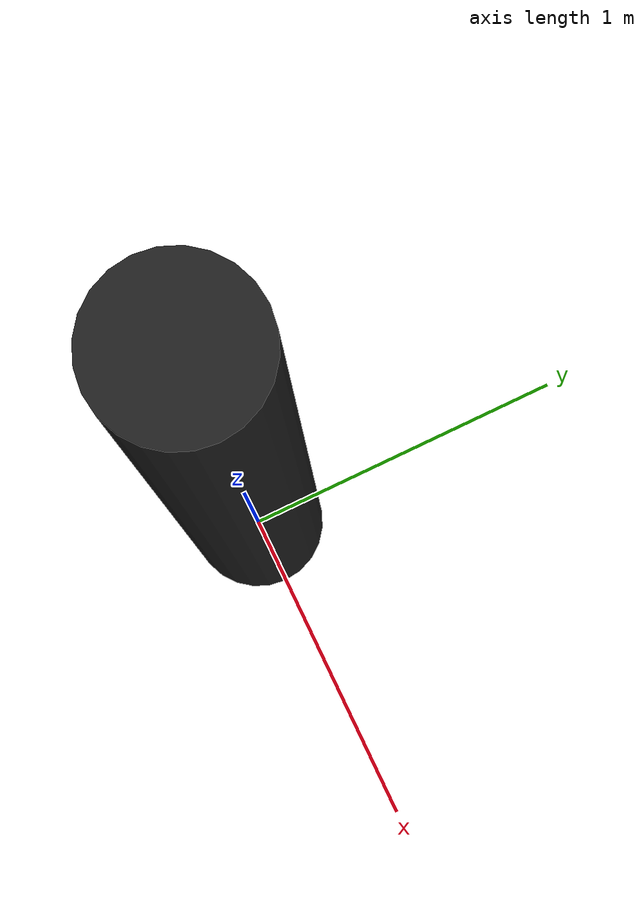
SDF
<?xml version='1.0'?>
<sdf version="1.5">
<model name="cylinder">
  <pose>0 0 2 0 0 0</pose>
  <static>true</static>
    <link name="link">
      <inertial>
        <mass>1.0</mass>
        <inertia> <!-- interias are tricky to compute -->
          <!-- http://answers.gazebosim.org/question/4372/the-inertia-matrix-explained/ -->
          <ixx>0.083</ixx>       <!-- for a box: ixx = 0.083 * mass * (y*y + z*z) -->
          <ixy>0.0</ixy>         <!-- for a box: ixy = 0 -->
          <ixz>0.0</ixz>         <!-- for a box: ixz = 0 -->
          <iyy>0.083</iyy>       <!-- for a box: iyy = 0.083 * mass * (x*x + z*z) -->
          <iyz>0.0</iyz>         <!-- for a box: iyz = 0 -->
          <izz>0.083</izz>       <!-- for a box: izz = 0.083 * mass * (x*x + y*y) -->
        </inertia>
      </inertial>
      <collision name="collision">
        <geometry>
          <cylinder>
            <radius>0.2</radius>
            <length>4</length>
          </cylinder>
        </geometry>
      </collision>
      <visual name="visual">
        <geometry>
          <cylinder>
            <radius>0.2</radius>
            <length>4</length>
          </cylinder>
        </geometry>
        <material>
          <script>
            <uri>file://media/materials/scripts/gazebo.material</uri>
            <name>Gazebo/Black</name>
          </script>
        </material>
      </visual>
    </link>
  </model>
</sdf>
